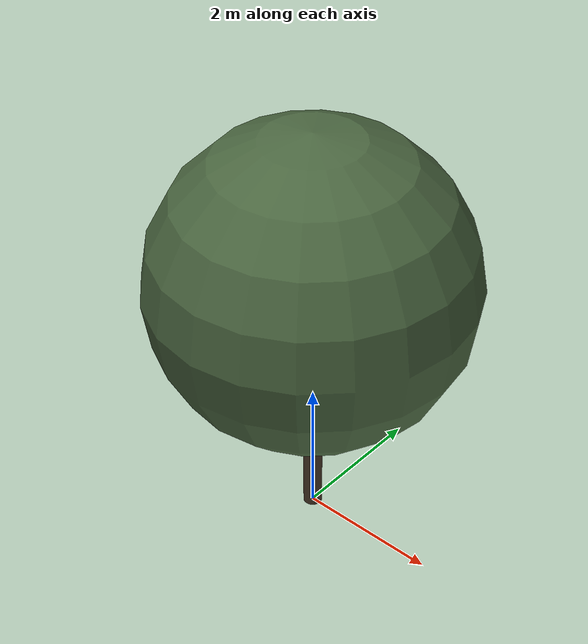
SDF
<?xml version="1.0" ?>
<sdf version="1.10">
  <model name="chene_vert_06">
    <static>true</static>

    <!-- Tronc -->
    <link name="trunk">
      <pose>0 0 1.5887221904864441 0 0 0</pose>
      <visual name="trunk_visual">
        <geometry>
          <cylinder>
            <radius>0.13283996999442513</radius>
            <length>3.1774443809728883</length>
          </cylinder>
        </geometry>
        <material>
          <ambient>0.29 0.22 0.16 1</ambient>
          <diffuse>0.29 0.22 0.16 1</diffuse>
          <specular>0.1 0.1 0.1 1</specular>
        </material>
      </visual>
      <collision name="trunk_collision">
        <geometry>
          <cylinder>
            <radius>0.13283996999442513</radius>
            <length>3.1774443809728883</length>
          </cylinder>
        </geometry>
      </collision>
    </link>

    <!-- Feuillage -->
    <link name="crown">
      <pose>0 0 3.853688553691962 0 0 0</pose>
      <visual name="crown_visual">
        <geometry>
          <sphere>
              <radius>2.2541472423969124</radius>
            </sphere>
        </geometry>
        <material>
          <ambient>0.29 0.40 0.25 1</ambient>
          <diffuse>0.29 0.40 0.25 1</diffuse>
          <specular>0.1 0.1 0.1 1</specular>
        </material>
      </visual>
      <collision name="crown_collision">
        <geometry>
          <sphere>
            <radius>1.80331779391753</radius>
          </sphere>
        </geometry>
      </collision>
    </link>

    <!-- Joint tronc-feuillage -->
    <joint name="trunk_crown_joint" type="fixed">
      <parent>trunk</parent>
      <child>crown</child>
    </joint>

  </model>
</sdf>
